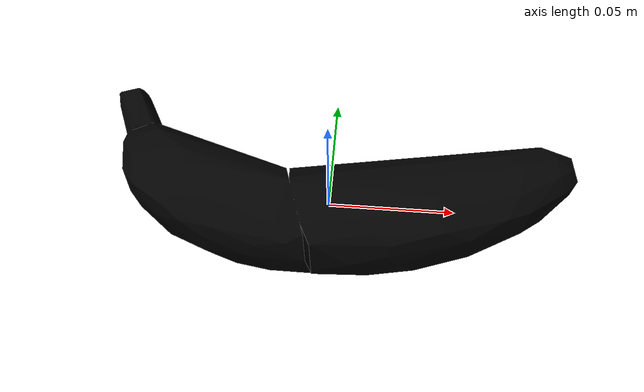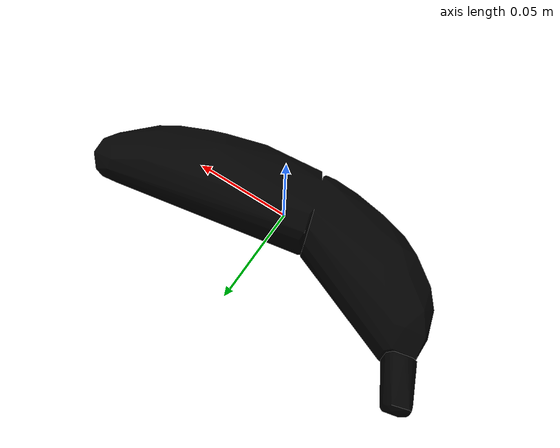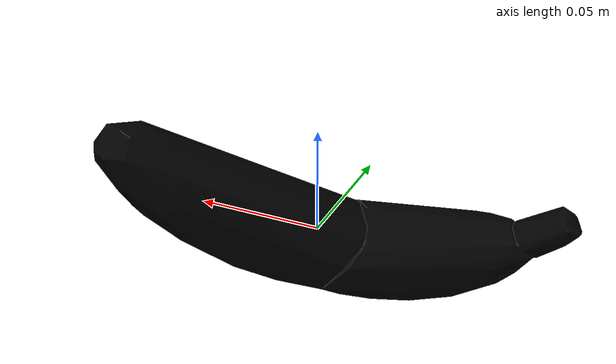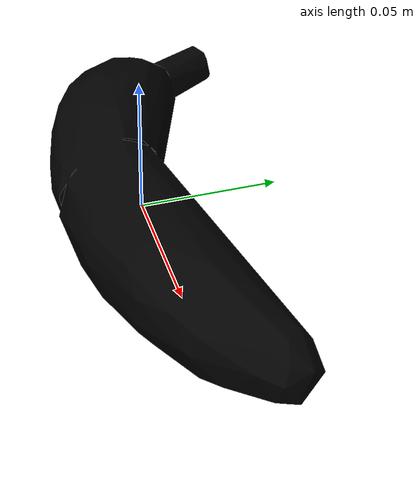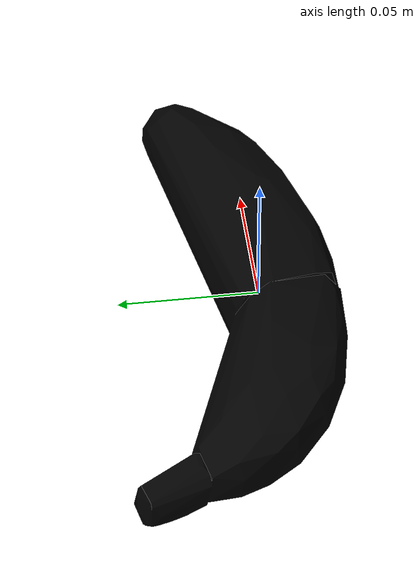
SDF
<?xml version="1.0"?>
<sdf version="1.4">
  <model name="011_banana_textured">
    <pose>0 0 0  0 0 0</pose>
    <link name="body">
      <inertial>
        <mass> 1.0 </mass>
        <pose>0 0 0 0 0 0</pose>
        <inertia>
          <ixx>0.00023758767725674733</ixx>
          <ixy>0.0</ixy>
          <ixz>0.0</ixz>
          <iyy>0.002394689230875117</iyy>
          <iyz>0.0</iyz>
          <izz>0.002490490907518135</izz>
        </inertia>
      </inertial>
      <visual name="visual">
        <geometry>
          <mesh>
            <uri>model://011_banana_textured/textured.dae</uri>
          </mesh>
        </geometry>
        <pose>0.000795771297852427 0.013917183612524506 -0.014639734749912425 -0.06716939449177317 -0.18969549940879668 1.8969587426163472</pose>
      </visual>
      <collision name="collision">
        <geometry>
          <mesh>
            <uri>model://011_banana_textured/textured.col.dae</uri>
          </mesh>
        </geometry>
        <max_contacts>10</max_contacts>
        <surface>
          <friction>
            <ode>
              <mu>0.8</mu>
              <mu2>0.8</mu2>
              <slip1>0</slip1>
              <slip2>0</slip2>
            </ode>
            <torsional>
              <ode/>
            </torsional>
          </friction>
          <contact>
            <ode>
              <kp>1000000.0</kp>
              <kd>1.0</kd>
              <max_vel>0.0</max_vel>
            </ode>
          </contact>
        </surface>
        <pose>0.000795771297852427 0.013917183612524506 -0.014639734749912425 -0.06716939449177317 -0.18969549940879668 1.8969587426163472</pose>
      </collision>
    </link>
  </model>
</sdf>
